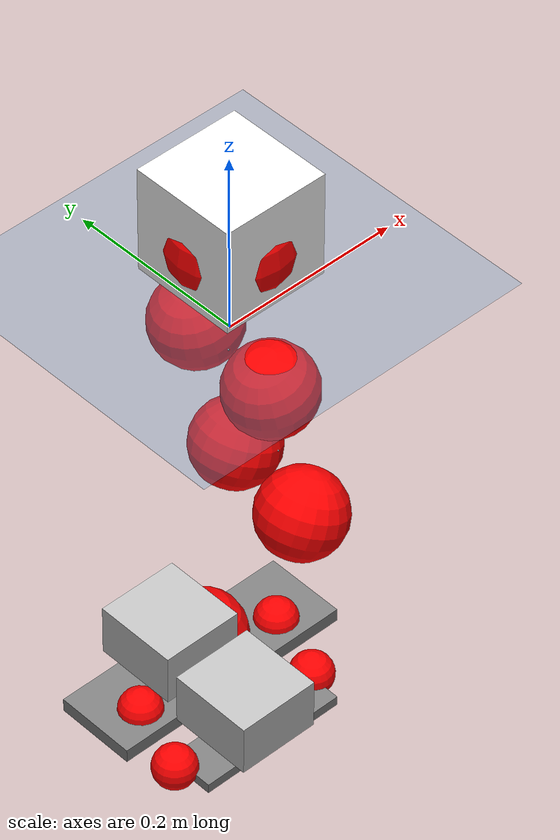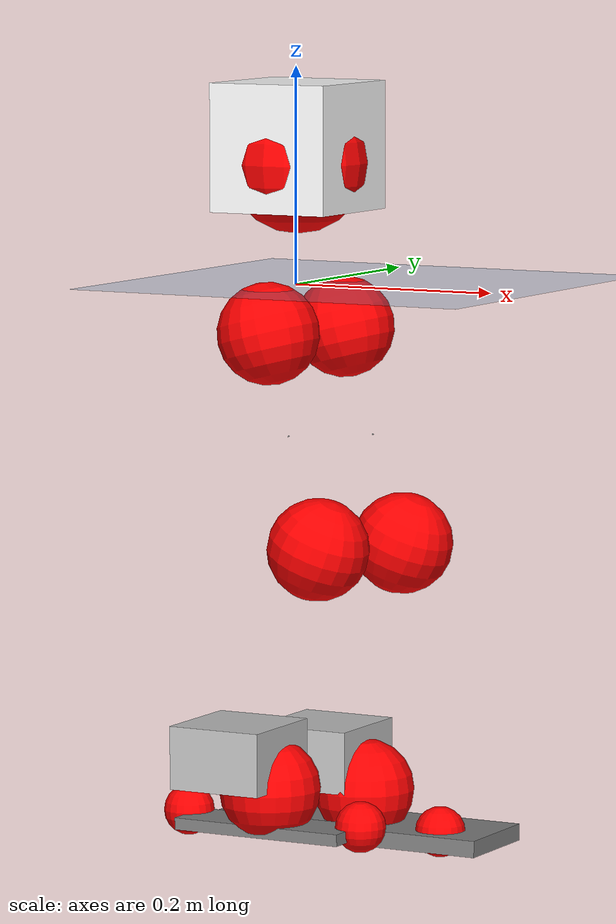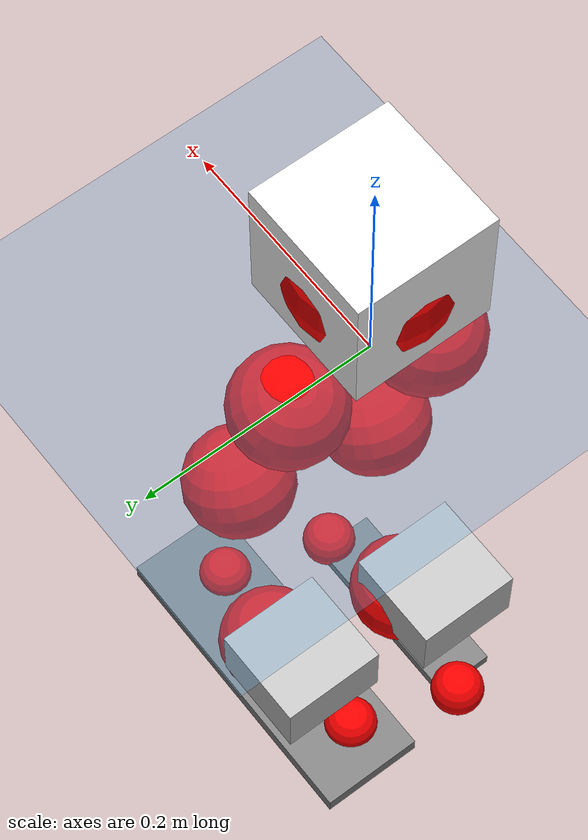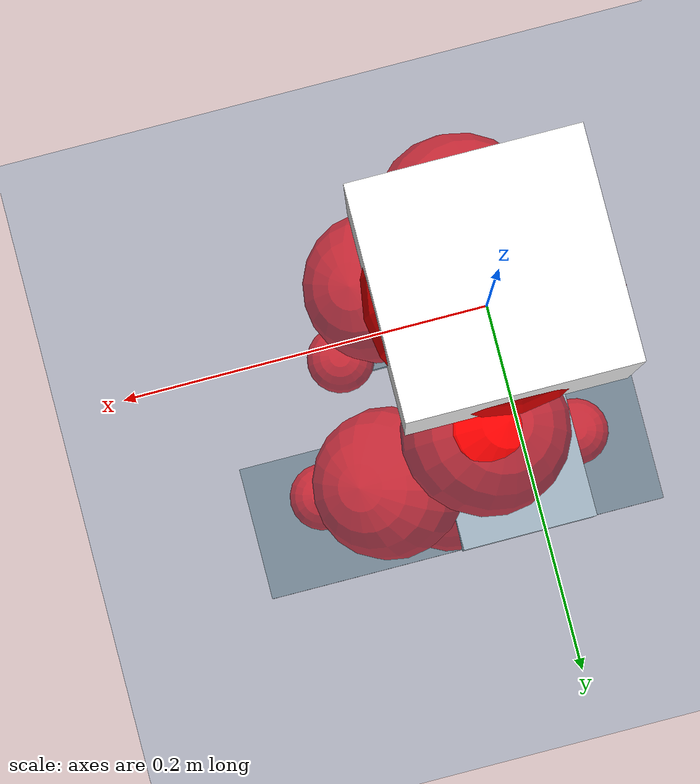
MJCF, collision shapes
<mujoco model="pi_12dof_release_v1">
  <compiler angle="radian" assetdir="assets" balanceinertia="true" inertiafromgeom="false"/>

  <option timestep="0.005" density="1.2" viscosity="2e-05"/>

  <size nkey="1"/>

  <visual>
    <quality shadowsize="8192"/>
    <map shadowclip="0.5"/>
  </visual>

  <default>
    <default class="/">
      <joint armature="0.01" damping="0.01" frictionloss="0.01"/>
      <geom contype="0" conaffinity="0" group="1" solref="-1000 -80"/>
      <site size="0.01 0.005 0.005" group="5"/>
      <general forcelimited="true" biastype="affine" gainprm="20" biasprm="0 -20 -0.5"/>
      <default class="foot">
        <geom size="0.0845 0.036 0.005" type="box" condim="6" group="4" priority="1" friction="0.9 0.2 0.2" solimp="0.015 1 0.005"/>
      </default>
      <default class="reward_collision_sphere">
        <geom group="5" rgba="1 0 0 1"/>
      </default>
    </default>
  </default>

  <asset>
    <texture type="skybox" colorspace="auto" name="//unnamed_texture_0" builtin="gradient" rgb1="0.95 0.95 0.95" rgb2="0.95 0.95 0.95" width="100" height="600"/>
    <texture type="2d" colorspace="auto" name="texplane" builtin="checker" rgb1="0.345 0.575 0.748" rgb2="0.345 0.575 0.748" markrgb="1 1 1" width="512" height="512"/>
    <material name="MatPlane" class="/" texture="texplane" texuniform="true" texrepeat="2 2" specular="0.9"/>
    <mesh name="baselink_1" class="/" file="baselink_1.STL"/>
    <mesh name="r_hip_pitch_link" class="/" file="r_hip_pitch_link.STL"/>
    <mesh name="r_hip_roll_link" class="/" file="r_hip_roll_link.STL"/>
    <mesh name="r_thigh_link" class="/" file="r_thigh_link.STL"/>
    <mesh name="r_calf_link" class="/" file="r_calf_link.STL"/>
    <mesh name="r_ankle_pitch_link" class="/" file="r_ankle_pitch_link.STL"/>
    <mesh name="r_ankle_roll_link" class="/" file="r_ankle_roll_link.STL"/>
    <mesh name="l_hip_pitch_link" class="/" file="l_hip_pitch_link.STL"/>
    <mesh name="l_hip_roll_link" class="/" file="l_hip_roll_link.STL"/>
    <mesh name="l_thigh_link" class="/" file="l_thigh_link.STL"/>
    <mesh name="l_calf_link" class="/" file="l_calf_link.STL"/>
    <mesh name="l_ankle_pitch_link" class="/" file="l_ankle_pitch_link.STL"/>
    <mesh name="l_ankle_roll_link" class="/" file="l_ankle_roll_link.STL"/>
  </asset>

  <worldbody>
    <geom name="floor" class="/" size="100 100 0.125" type="plane" group="0" material="MatPlane"/>
    <light name="toplight_shadow" class="/" pos="0 0 5" dir="0.0990148 0.0990148 -0.990148" type="directional" ambient="0.04 0.04 0.04" diffuse="0.55 0.55 0.55" specular="0.12 0.12 0.12"/>
    <light name="toplight_fill" class="/" pos="0 0 5" dir="0.0990148 0.0990148 -0.990148" type="directional" castshadow="false" ambient="0.04 0.04 0.04" diffuse="0.3 0.3 0.3" specular="0.08 0.08 0.08"/>
    <body name="trunk" pos="0.00176493 -5.14515e-06 0.00524621" quat="1 0.00065756 -0.000242098 -0.000377462">
      <inertial pos="0.00963208 0.00780665 0.0591913" quat="0.698971 0.00925404 0.00668312 0.715059" mass="3.59096" diaginertia="0.037561 0.00113371 0.0297512"/>
      <joint name="//unnamed_joint_0" type="free"/>
      <geom name="//unnamed_geom_1" class="/" type="mesh" density="0" rgba="1 1 1 1" mesh="baselink_1"/>
      <geom name="//unnamed_geom_2" class="/" size="0.058991 0.058991 0.058991" pos="0 0 0.121605" type="box" rgba="1 1 1 1"/>
      <geom name="//unnamed_geom_3" class="reward_collision_sphere" size="0.0648901" pos="0 0 0.106404"/>
      <site name="imu" class="/" pos="0.0499832 -0.00659872 -0.0392335" size="0.0117982"/>
      <camera name="track" class="/" pos="0 -1.34853 0" quat="0.707107 0.707107 0 0" mode="trackcom"/>
      <camera name="ego_camera" class="/" pos="0.100886 0 0.27361" quat="-0.5 -0.5 0.5 0.5"/>
      <body name="r_hip_pitch_link" pos="0.000270924 -0.0140468 -0.0492621" quat="0.992139 0.000402655 -0.125136 -0.00117336">
        <inertial pos="-0.00682749 -0.0344898 -0.00199207" quat="-0.00821503 0.702997 -0.0119414 0.711045" mass="0.655429" diaginertia="0.000517934 1.31073e-05 0.000650751"/>
        <joint name="r_hip_pitch_joint" class="/" pos="0 0 0" axis="-0.0514506 -0.998598 -0.0124603" range="-1.75157 1.4262" armature="0.0132622" damping="0.0568868" frictionloss="0.0124864"/>
        <geom name="//unnamed_geom_4" class="/" type="mesh" density="0" rgba="0.75294 0.75294 0.75294 1" mesh="r_hip_pitch_link"/>
        <geom name="//unnamed_geom_5" class="/" size="0.00058991 0.00058991 0.00058991" type="box" rgba="0.75294 0.75294 0.75294 1"/>
        <body name="r_hip_roll_link" pos="-0.000193365 -0.0401418 0.00329162" quat="1 -0.000299996 -0.000144834 -4.12129e-05">
          <inertial pos="-0.00418633 0.00121341 -0.100902" quat="0.706986 -0.0785 -0.0822974 0.698023" mass="0.618517" diaginertia="0.00166497 3.98408e-05 0.00105481"/>
          <joint name="r_hip_roll_joint" class="/" pos="0 0 0" axis="-0.998808 -0.0486133 0.00436993" range="0.0438393 0.467397" armature="0.0130295" damping="0.00732111" frictionloss="0.00839479"/>
          <geom name="//unnamed_geom_6" class="/" type="mesh" density="0" rgba="0.75294 0.75294 0.75294 1" mesh="r_hip_roll_link"/>
          <geom name="//unnamed_geom_7" class="/" size="0.00058991 0.00058991 0.00058991" type="box" rgba="0.75294 0.75294 0.75294 1"/>
          <geom name="//unnamed_geom_8" class="reward_collision_sphere" size="0.0471928"/>
          <body name="r_thigh_link" pos="-0.00706158 0.00696814 -0.0951255" quat="0.999994 0.00330813 0.000528694 0.000211726">
            <inertial pos="0.000361138 0.00215339 -0.0723952" quat="0.737257 0.675612 -0.000258349 -0.000300226" mass="0.188529" diaginertia="0.000571578 1.32894e-05 0.000487827"/>
            <joint name="r_thigh_joint" class="/" pos="0 0 0" axis="-0.0107767 0.0195273 -0.999751" range="-0.327448 0.564557" armature="0.0109293" damping="0" frictionloss="0.012424"/>
            <geom name="//unnamed_geom_9" class="/" type="mesh" density="0" rgba="0.75294 0.75294 0.75294 1" mesh="r_thigh_link"/>
            <geom name="//unnamed_geom_10" class="/" size="0.00058991 0.00058991 0.00058991" type="box" rgba="0.75294 0.75294 0.75294 1"/>
            <body name="r_calf_link" pos="0.00464471 -0.000917649 -0.10672" quat="0.947736 -0.00136896 0.319051 0.000568605">
              <inertial pos="-0.00813464 -0.00132047 -0.104606" quat="0.999981 0.00197696 -0.00501925 0.0030291" mass="1.26314" diaginertia="0.0150818 0.000439583 0.00133152"/>
              <joint name="r_calf_joint" class="/" pos="0 0 0" axis="0.0210791 -0.999574 0.0201867" stiffness="0.00240083" range="-1.69243 0.577757" armature="0.0146618" damping="0" frictionloss="0.013498"/>
              <geom name="//unnamed_geom_11" class="/" type="mesh" density="0" rgba="0.75294 0.75294 0.75294 1" mesh="r_calf_link"/>
              <geom name="//unnamed_geom_12" class="/" size="0.00058991 0.00058991 0.00058991" type="box" rgba="0.75294 0.75294 0.75294 1"/>
              <geom name="//unnamed_geom_13" class="reward_collision_sphere" size="0.0471928"/>
              <body name="r_ankle_pitch_link" pos="0.00222112 -0.00847848 -0.209979" quat="0.980057 7.07726e-05 -0.198717 4.80063e-05">
                <inertial pos="0.00593552 0.00361114 -0.00196433" quat="0.00623719 0.68831 0.0247368 0.724968" mass="0.345794" diaginertia="0.00149059 3.14084e-05 0.00101302"/>
                <joint name="r_ankle_pitch_joint" class="/" pos="0 0 0" axis="0.00219685 -0.999998 0.000251881" stiffness="0.0261034" range="-1.30136 0.517962" armature="0.0113514" damping="0.0454147" frictionloss="0.0114977"/>
                <geom name="//unnamed_geom_14" class="/" type="mesh" density="0" rgba="0.75294 0.75294 0.75294 1" mesh="r_ankle_pitch_link"/>
                <geom name="//unnamed_geom_15" class="/" size="0.046013 0.0471928 0.0294955" type="box" rgba="0.75294 0.75294 0.75294 1"/>
                <body name="r_ankle_roll_link" pos="0.093227 0.0121405 -0.00183927" quat="1 0.000202351 0.000423536 -1.39448e-05">
                  <inertial pos="-0.0328043 -0.0011404 -0.0306922" quat="0.571255 0.434419 0.419283 0.556012" mass="0.842564" diaginertia="0.00560988 0.000156249 0.00236292"/>
                  <joint name="r_ankle_roll_joint" class="/" pos="0 0 0" axis="-0.999901 -0.00438603 -0.013383" stiffness="0.00860058" range="-0.0547247 0.118231" armature="0.0113428" damping="0.0467751" frictionloss="0.00738478"/>
                  <geom name="//unnamed_geom_16" class="/" type="mesh" density="0" rgba="0.75294 0.75294 0.75294 1" mesh="r_ankle_roll_link"/>
                  <geom name="//unnamed_geom_17" class="/" type="mesh" rgba="0.75294 0.75294 0.75294 1" mesh="r_ankle_roll_link"/>
                  <geom name="right_foot" class="foot" size="0.0853566 0.0262147 0.00557705" pos="-0.0686022 0 -0.0668826"/>
                  <geom name="//unnamed_geom_19" class="reward_collision_sphere" size="0.0471928" pos="-0.067257 0 -0.0304012"/>
                  <geom name="//unnamed_geom_20" class="reward_collision_sphere" size="0.0235964" pos="0.0201771 0.0134853 -0.0608023"/>
                  <geom name="//unnamed_geom_21" class="reward_collision_sphere" size="0.0235964" pos="-0.161417 0.0134853 -0.0608023"/>
                  <site name="right_foot" class="foot" pos="-0.0686022 0 -0.0668826" size="0.0117982"/>
                </body>
              </body>
            </body>
          </body>
        </body>
      </body>
      <body name="l_hip_pitch_link" pos="0.00967332 0.0136828 -0.0503573" quat="0.992205 5.30916e-05 -0.124615 0.000265426">
        <inertial pos="-0.00117892 0.028276 0.00113836" quat="-0.0336658 0.713769 0.0460916 0.698052" mass="0.646714" diaginertia="0.000625957 1.40872e-05 0.000979658"/>
        <joint name="l_hip_pitch_joint" class="/" pos="0 0 0" axis="0.0283545 0.999523 0.0122358" stiffness="0.00146273" range="-1.08374 1.77915" armature="0.00643057" damping="0.0517063" frictionloss="0.0113011"/>
        <geom name="//unnamed_geom_22" class="/" type="mesh" density="0" rgba="0.75294 0.75294 0.75294 1" mesh="l_hip_pitch_link"/>
        <geom name="//unnamed_geom_23" class="/" size="0.00058991 0.00058991 0.00058991" type="box" rgba="0.75294 0.75294 0.75294 1"/>
        <body name="l_hip_roll_link" pos="0.00454614 0.0490032 0.000240737" quat="1 0.000139616 0.000113728 -0.000122396">
          <inertial pos="-0.000619644 -0.00652514 -0.0939616" quat="0.695576 -0.0820396 -0.0822533 0.708998" mass="0.639851" diaginertia="0.00147247 4.05592e-05 0.00103128"/>
          <joint name="l_hip_roll_joint" class="/" pos="0 0 0" axis="-0.998823 -0.0159901 -0.0457939" range="-0.696354 0.0215121" armature="0.0123084" damping="0.00995451" frictionloss="0.0164234"/>
          <geom name="//unnamed_geom_24" class="/" type="mesh" density="0" rgba="0.75294 0.75294 0.75294 1" mesh="l_hip_roll_link"/>
          <geom name="//unnamed_geom_25" class="/" size="0.00058991 0.00058991 0.00058991" type="box" rgba="0.75294 0.75294 0.75294 1"/>
          <geom name="//unnamed_geom_26" class="reward_collision_sphere" size="0.0471928"/>
          <body name="l_thigh_link" pos="0.00465998 -0.000372642 -0.103613" quat="1 -0.000537653 -0.00033825 -0.000569046">
            <inertial pos="0.000676898 0.0009011 -0.0752289" quat="0.661726 0.747979 -0.0356987 0.0370438" mass="0.18814" diaginertia="0.000569899 1.35952e-05 0.000535458"/>
            <joint name="l_thigh_joint" class="/" pos="0 0 0" axis="-0.00466557 0.00670114 -0.999967" range="-0.521076 0.207771" armature="0.0101545" damping="0.0420561" frictionloss="0.0091599"/>
            <geom name="//unnamed_geom_27" class="/" type="mesh" density="0" rgba="0.75294 0.75294 0.75294 1" mesh="l_thigh_link"/>
            <geom name="//unnamed_geom_28" class="/" size="0.00058991 0.00058991 0.00058991" type="box" rgba="0.75294 0.75294 0.75294 1"/>
            <body name="l_calf_link" pos="0.00140117 0.00828121 -0.104399" quat="0.947408 0.00194772 0.320013 0.00234966">
              <inertial pos="0.00894327 0.000416193 -0.113575" quat="0.999987 0.00345662 -0.000872447 0.00364059" mass="1.37728" diaginertia="0.0162819 0.000509101 0.00164255"/>
              <joint name="l_calf_joint" class="/" pos="0 0 0" axis="-0.00284628 0.999957 -0.00877285" stiffness="0.00318265" range="-0.680721 1.86995" armature="0.0161009" damping="0.00632783" frictionloss="0.0165002"/>
              <geom name="//unnamed_geom_29" class="/" type="mesh" density="0" rgba="0.75294 0.75294 0.75294 1" mesh="l_calf_link"/>
              <geom name="//unnamed_geom_30" class="/" size="0.00058991 0.00058991 0.00058991" type="box" rgba="0.75294 0.75294 0.75294 1"/>
              <geom name="//unnamed_geom_31" class="reward_collision_sphere" size="0.0471928"/>
              <body name="l_ankle_pitch_link" pos="0.00244307 0.00257888 -0.221475" quat="0.980173 -0.00045146 -0.198141 -0.000566228">
                <inertial pos="0.000890616 -0.00107176 0.00058971" quat="-0.00161437 0.705454 0.00156608 0.708752" mass="0.36604" diaginertia="0.00167491 3.58022e-05 0.00110618"/>
                <joint name="l_ankle_pitch_joint" class="/" pos="0 0 0" axis="-0.0126732 0.999515 0.028459" range="-0.517873 1.27664" armature="0.0116883" damping="0.0364024" frictionloss="0.00531008"/>
                <geom name="//unnamed_geom_32" class="/" type="mesh" density="0" rgba="0.75294 0.75294 0.75294 1" mesh="l_ankle_pitch_link"/>
                <geom name="//unnamed_geom_33" class="/" size="0.046013 0.0471928 0.0294955" type="box" rgba="0.75294 0.75294 0.75294 1"/>
                <body name="l_ankle_roll_link" pos="0.109466 -0.000923125 -0.000498533" quat="0.999999 0.000596706 -0.000309959 -0.00125319">
                  <inertial pos="-0.0305435 -0.000605827 -0.0205139" quat="0.568026 0.416423 0.409762 0.579685" mass="0.88805" diaginertia="0.00533119 0.000134245 0.00240701"/>
                  <joint name="l_ankle_roll_joint" class="/" pos="0 0 0" axis="-0.999942 -0.0096598 -0.00479256" stiffness="0.00401911" range="-0.167486 0.147898" armature="0.0122765" damping="0.0137615" frictionloss="0.0173282"/>
                  <geom name="//unnamed_geom_34" class="/" type="mesh" density="0" rgba="0.75294 0.75294 0.75294 1" mesh="l_ankle_roll_link"/>
                  <geom name="//unnamed_geom_35" class="/" type="mesh" rgba="0.75294 0.75294 0.75294 1" mesh="l_ankle_roll_link"/>
                  <geom name="left_foot" class="foot" size="0.140707 0.0464701 0.00779728" pos="-0.0686022 0 -0.0668826"/>
                  <geom name="//unnamed_geom_37" class="reward_collision_sphere" size="0.0471928" pos="-0.067257 0 -0.0304012"/>
                  <geom name="//unnamed_geom_38" class="reward_collision_sphere" size="0.0235964" pos="0.0201771 -0.0134853 -0.0608023"/>
                  <geom name="//unnamed_geom_39" class="reward_collision_sphere" size="0.0235964" pos="-0.161417 -0.0134853 -0.0608023"/>
                  <site name="left_foot" class="foot" pos="-0.0686022 0 -0.0668826" size="0.0117982"/>
                </body>
              </body>
            </body>
          </body>
        </body>
      </body>
    </body>
  </worldbody>

  <contact>
    <pair class="/" geom1="floor" geom2="right_foot" name="//unnamed_contact_1"/>
    <pair class="/" geom1="floor" geom2="left_foot" name="//unnamed_contact_0"/>
  </contact>

  <actuator>
    <general name="r_hip_pitch_joint" class="/" joint="r_hip_pitch_joint" forcerange="-23.6296 23.6296" gainprm="23.1042" biasprm="0 -23.1042 -0.478419"/>
    <general name="r_hip_roll_joint" class="/" joint="r_hip_roll_joint" forcerange="-31.3964 31.3964" gainprm="23.1042" biasprm="0 -23.1042 -0.478419"/>
    <general name="r_thigh_joint" class="/" joint="r_thigh_joint" forcerange="-19.2944 19.2944" gainprm="23.1042" biasprm="0 -23.1042 -0.478419"/>
    <general name="r_calf_joint" class="/" joint="r_calf_joint" forcerange="-23.0232 23.0232" gainprm="23.1042" biasprm="0 -23.1042 -0.478419"/>
    <general name="r_ankle_pitch_joint" class="/" joint="r_ankle_pitch_joint" forcerange="-31.1324 31.1324" gainprm="23.1042" biasprm="0 -23.1042 -0.478419"/>
    <general name="r_ankle_roll_joint" class="/" joint="r_ankle_roll_joint" forcerange="-24.5889 24.5889" gainprm="23.1042" biasprm="0 -23.1042 -0.478419"/>
    <general name="l_hip_pitch_joint" class="/" joint="l_hip_pitch_joint" forcerange="-23.9355 23.9355" gainprm="23.1042" biasprm="0 -23.1042 -0.478419"/>
    <general name="l_hip_roll_joint" class="/" joint="l_hip_roll_joint" forcerange="-28.3051 28.3051" gainprm="23.1042" biasprm="0 -23.1042 -0.478419"/>
    <general name="l_thigh_joint" class="/" joint="l_thigh_joint" forcerange="-24.8501 24.8501" gainprm="23.1042" biasprm="0 -23.1042 -0.478419"/>
    <general name="l_calf_joint" class="/" joint="l_calf_joint" forcerange="-28.8097 28.8097" gainprm="23.1042" biasprm="0 -23.1042 -0.478419"/>
    <general name="l_ankle_pitch_joint" class="/" joint="l_ankle_pitch_joint" forcerange="-22.4415 22.4415" gainprm="23.1042" biasprm="0 -23.1042 -0.478419"/>
    <general name="l_ankle_roll_joint" class="/" joint="l_ankle_roll_joint" forcerange="-31.8749 31.8749" gainprm="23.1042" biasprm="0 -23.1042 -0.478419"/>
  </actuator>

  <sensor>
    <gyro site="imu" name="imu_angular_velocity"/>
    <velocimeter site="imu" name="imu_linear_velocity"/>
    <framelinvel objtype="site" objname="left_foot" name="left_foot_global_linear_velocity"/>
    <framelinvel objtype="site" objname="right_foot" name="right_foot_global_linear_velocity"/>
  </sensor>

  <keyframe>
    <key name="home" qpos="0 0 0.291 1 0 0 0 0.4 0 0 -0.8 0.4 0 -0.4 0 0 0.8 -0.4 0"/>
  </keyframe>
</mujoco>
